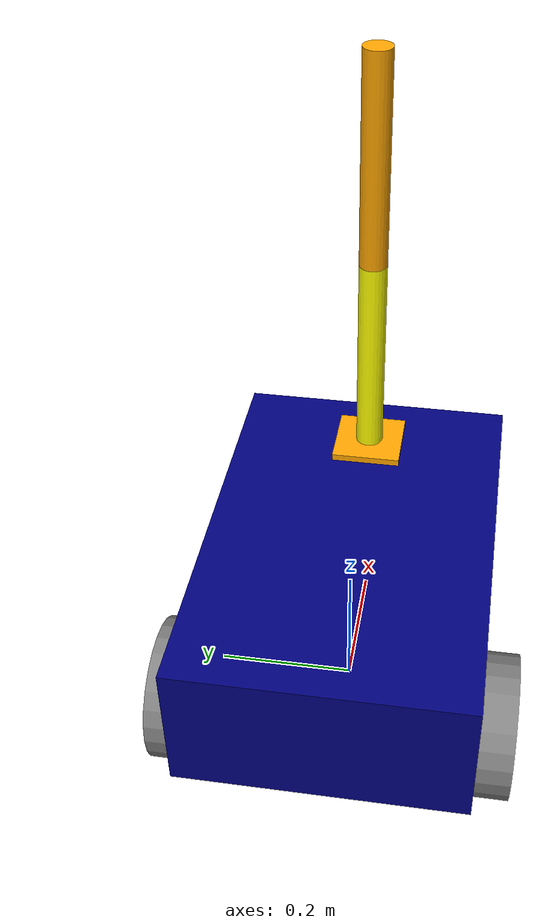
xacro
<?xml version="1.0"?>
<robot name="my_robot" xmlns:xacro="http://www.ros.org/wiki/xacro">

    <xacro:include filename="common_properties.xacro" />
    <xacro:include filename="mobile_base.xacro" />
    <xacro:include filename="camera.xacro" />
    <xacro:include filename="mobile_base_gazebo.xacro" />
    <xacro:include filename="arm.xacro" />
    <xacro:include filename="arm_gazebo.xacro" />

    <joint name="base_arm_joint" type="fixed">
        <parent link="base_link" />
        <child link="arm_base_link" />
        <origin xyz="${base_length / 3.0} 0 ${base_hight}" rpy="0 0 ${pi / 2.0}" />
    </joint>
</robot>

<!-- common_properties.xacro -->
<robot xmlns:xacro="http://www.ros.org/wiki/xacro">

    <material name="blue">
        <color rgba="0 0 0.5 1" />
    </material>

    <material name="grey">
        <color rgba="0.5 0.5 0.5 1" />
    </material>

    <material name="orange">
        <color rgba="1 0.65 0 1" />
    </material>

    <material name="yellow">
        <color rgba="1 1 0 1" />
    </material>

    <xacro:macro name="box_inertia" params="m l w h xyz rpy" >
        <inertial>
            <origin xyz="${xyz}"  rpy="${rpy}" />
            <mass value="${m}" />
            <inertia ixx="${(m/12) * (h*h + l*l)}" ixy="0" ixz="0"
                     iyy="${(m/12) * (w*w + l*l)}" iyz="0"
                     izz="${(m/12) * (w*w + h*h)}" >
            </inertia>
        </inertial>

    </xacro:macro>

    <xacro:macro name="cylinder_inertia" params="m r h xyz rpy" >
        <inertial>
            <origin xyz="${xyz}"  rpy="${rpy}" />
            <mass value="${m}" />
            <inertia ixx="${(m/12) * (3*r*r + h*h)}" ixy="0" ixz="0"
                     iyy="${(m/12) * (3*(r*r) + h*h)}" iyz="0"
                     izz="${(m/2) * (r*r)}" >
            </inertia>
        </inertial>

    </xacro:macro>

    <xacro:macro name="sphere_inertia" params="m r xyz rpy" >
        <inertial>
            <origin xyz="${xyz}"  rpy="${rpy}" />
            <mass value="${m}" />
            <inertia ixx="${(2/5)* m * r*r}" ixy="0" ixz="0"
                     iyy="${(2/5) * m * r*r}" iyz="0"
                     izz="${(2/5) * m * r*r}"   >
            </inertia>
        </inertial>

    </xacro:macro>

</robot>

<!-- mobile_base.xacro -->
<robot xmlns:xacro="http://www.ros.org/wiki/xacro">

    <xacro:property name="base_length" value="0.6" />
    <xacro:property name="base_width" value="0.4" />
    <xacro:property name="base_hight" value="0.2" />
    <xacro:property name="wheel_radius" value="0.1" />
    <xacro:property name="wheel_length" value="0.05" />

    <link name="base_link">
        <visual>
            <geometry>
                <box size="${base_length} ${base_width} ${base_hight}" />
            </geometry>
            <origin xyz="0 0 ${base_hight / 2.0}" rpy="0 0 0" />
            <material name="blue" />
        </visual>
        <collision>
            <geometry>
                <box size="${base_length} ${base_width} ${base_hight}" />
            </geometry>
            <origin xyz="0 0 ${base_hight / 2.0}" rpy="0 0 0" />
        </collision>
        <xacro:box_inertia m="5.0" l="${2*base_length}" w="${2*base_width}" h="${2*base_hight}"
                           xyz="0 0 ${base_hight / 2.0}" rpy="0 0 0" />
    </link>

    <xacro:macro name="wheel_link" params="prefix">
        <link name="${prefix}_wheel_link">
            <visual>
                <geometry>
                    <cylinder radius="${wheel_radius}" length="${wheel_length}" />
                </geometry>
                <origin xyz="0 0 0" rpy="${pi / 2.0} 0 0" />
                <material name="grey" />
            </visual>
            <collision>
                <geometry>
                    <cylinder radius="${wheel_radius}" length="${wheel_length}" />
                </geometry>
                <origin xyz="0 0 0" rpy="${pi / 2.0} 0 0" />
            </collision>
            <xacro:cylinder_inertia m="1.0" r="${2*wheel_radius}" h="${2*wheel_length}"
                                    xyz="0 0 0" rpy="${pi / 2.0} 0 0" />
        </link>
    </xacro:macro>

    <xacro:wheel_link prefix="right" />
    <xacro:wheel_link prefix="left" />

    <link name="caster_wheel_link">
        <visual>
            <geometry>
                <sphere radius="${wheel_radius / 2.0}" />
            </geometry>
            <origin xyz="0 0 0" rpy="0 0 0" />
            <material name="grey" />
        </visual>
        <collision>
            <geometry>
                <sphere radius="${wheel_radius / 2.0}" />
            </geometry>
            <origin xyz="0 0 0" rpy="0 0 0" />
        </collision>
        <xacro:sphere_inertia m="0.5" r="${2*wheel_radius / 2.0}"
                            xyz="0 0 0" rpy="0 0 0" />
    </link>

    <link name="base_footprint">

    </link>

    <joint name="base_right_wheel_joint" type="continuous">
        <parent link="base_link" />
        <child link="right_wheel_link" />
        <origin xyz="${-base_length / 4.0} ${-base_width / 2.0 + -wheel_length / 2.0} 0" rpy="0 0 0" />
        <axis xyz="0 1 0" />
    </joint>

    <joint name="base_left_wheel_joint" type="continuous">
        <parent link="base_link" />
        <child link="left_wheel_link" />
        <origin xyz="${-base_length / 4.0} ${base_width / 2.0 + wheel_length / 2.0} 0" rpy="0 0 0" />
        <axis xyz="0 1 0" />
    </joint>

    <joint name="base_caster_wheel_joint" type="fixed">
        <parent link="base_link" />
        <child link="caster_wheel_link" />
        <origin xyz="${base_length / 3.0} 0 -${wheel_radius / 2.0}" rpy="0 0 0" />
    </joint>

    <joint name="base_joint" type="fixed">
        <parent link="base_footprint" />
        <child link="base_link" />
        <origin xyz="0 0 ${wheel_radius}" rpy="0 0 0" />
    </joint>

</robot>

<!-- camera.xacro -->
<robot xmlns:xacro="http://www.ros.org/wiki/xacro">
    <xacro:property name="camera_length" value="0.01" />
    <xacro:property name="camera_width" value="0.1" />
    <xacro:property name="camera_hight" value="0.05" />
    <link name="camera_link">
        <visual>
            <geometry>
                <box size="${camera_length} ${camera_width} ${camera_hight}" />
            </geometry>
            <origin xyz="0 0 0" rpy="0 0 0" />
            <material name="grey" />
        </visual>
        <collision>
            <geometry>
                <box size="${camera_length} ${camera_width} ${camera_hight}" />
            </geometry>
            <origin xyz="0 0 0" rpy="0 0 0" />
        </collision>
        <xacro:box_inertia m="0.1" l="${camera_length}" w="${camera_width}" h="${camera_hight}"
                           xyz="0 0 0" rpy="0 0 0" />
    </link>

    <joint name="base_camera_joint" type="fixed">
        <parent link="base_link" />
        <child link="camera_link" />
        <origin xyz="${(base_length + camera_length) / 2} 0 ${base_hight/2}" rpy="0 0 0" />
    </joint>

    <gazebo reference="camera_link">
        <material>Gazebo/Red</material>
        <sensor name="camera_sensor" type="camera">
            <pose>0 0 0 0 0 0</pose>
            <visualize>true</visualize>
            <update_rate>10.0</update_rate>
            <plugin name="camera_controller" filename="libgazebo_ros_camera.so">
                <frame_name>camera_link</frame_name>
            </plugin>
        </sensor>
    </gazebo>

</robot>

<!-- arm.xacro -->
<robot xmlns:xacro="http://www.ros.org/wiki/xacro">

    <xacro:property name="arm_base_length" value="0.1" />
    <xacro:property name="arm_base_width" value="0.1" />
    <xacro:property name="arm_base_hight" value="0.02" />
    <xacro:property name="arm_base_mass" value="0.5" />

    <xacro:property name="forearm_radius" value="0.02" />
    <xacro:property name="forearm_length" value="0.3" />
    <xacro:property name="forearm_mass" value="0.3" />

    <xacro:property name="hand_radius" value="0.02" />
    <xacro:property name="hand_length" value="0.3" />
    <xacro:property name="hand_mass" value="0.3" />

    <link name="arm_base_link">
        <visual>
            <geometry>
                <box size="${arm_base_length} ${arm_base_width} ${arm_base_hight}" />
            </geometry>
            <origin xyz="0 0 0" rpy="0 0 0" />
            <material name="orange" />
        </visual>
        <collision>
            <geometry>
                <box size="${arm_base_length} ${arm_base_width} ${arm_base_hight}" />
            </geometry>
            <origin xyz="0 0 0" rpy="0 0 0" />
        </collision>
        <xacro:box_inertia m="${arm_base_mass}" l="${arm_base_length}" w="${arm_base_width}" h="${arm_base_hight}"
                           xyz="0 0 0" rpy="0 0 0" />
    </link>

    <link name="forearm_link">
        <visual>
            <geometry>
                <cylinder radius="${forearm_radius}" length="${forearm_length}" />
            </geometry>
            <origin xyz="0 0 ${forearm_length / 2}" rpy="0 0 0" />
            <material name="yellow" />
        </visual>
        <collision>
            <geometry>
                <cylinder radius="${forearm_radius}" length="${forearm_length}" />
            </geometry>
            <origin xyz="0 0 ${forearm_length / 2}" rpy="0 0 0" />
        </collision>
        <xacro:cylinder_inertia m="${forearm_mass}" r="${forearm_radius}" h="${forearm_length}"
                                xyz="0 0 ${forearm_length / 2}" rpy="0 0 0" />
    </link>

    <link name="hand_link">
        <visual>
            <geometry>
                <cylinder radius="${hand_radius}" length="${hand_length}" />
            </geometry>
            <origin xyz="0 0 ${hand_length / 2}" rpy="0 0 0" />
            <material name="orange" />
        </visual>
        <collision>
            <geometry>
                <cylinder radius="${hand_radius}" length="${hand_length}" />
            </geometry>
            <origin xyz="0 0 ${forearm_length / 2}" rpy="0 0 0" />
        </collision>
        <xacro:cylinder_inertia m="${hand_mass}" r="${hand_radius}" h="${hand_length}"
                                xyz="0 0 ${forearm_length / 2}" rpy="0 0 0" />
    </link>

    <joint name="base_forearm_joint" type="revolute">
        <parent link="arm_base_link" />
        <child link="forearm_link" />
        <origin xyz="0 0 ${arm_base_hight / 2}" rpy="0 0 0" />
        <axis xyz="1 0 0" />
        <limit lower="0" upper="${pi / 2.0}" velocity="100" effort="100" />
        <dynamics friction="0.05" damping="0.1" />
    </joint>

    <joint name="forearm_hand_joint" type="revolute">
        <parent link="forearm_link" />
        <child link="hand_link" />
        <origin xyz="0 0 ${forearm_length}" rpy="0 0 0" />
        <axis xyz="1 0 0" />
        <limit lower="0" upper="${pi / 2.0}" velocity="100" effort="100" />
        <dynamics friction="0.05" damping="0.1" />
    </joint>

</robot>
